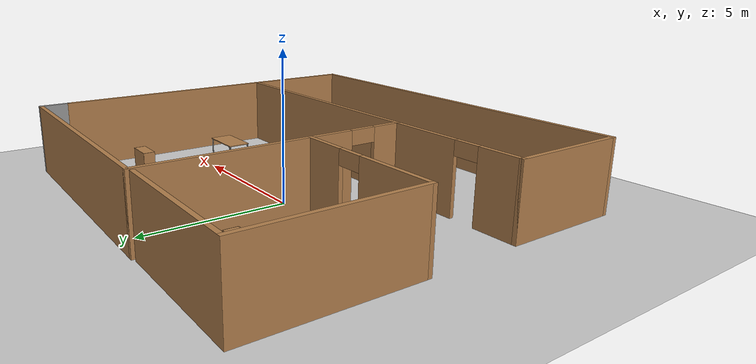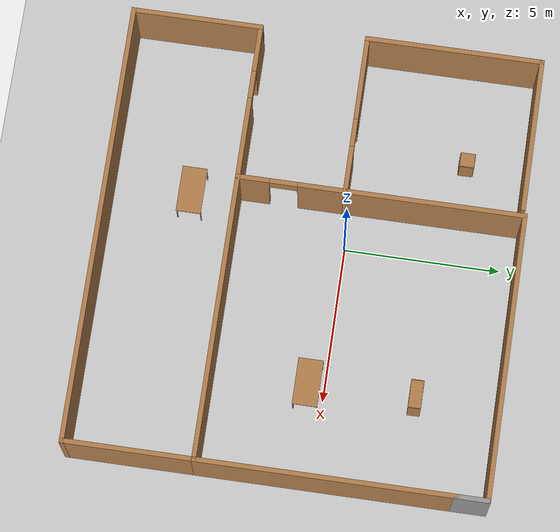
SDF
<sdf version="1.7">
 <world name="default">
  <light name="sun" type="directional">
   <pose>0 0 10 0 -0 0</pose>
   <diffuse>0.8 0.8 0.8 1</diffuse>
   <specular>0.2 0.2 0.2 1</specular>
   <attenuation>
    <range>1000</range>
    <constant>0.9</constant>
    <linear>0.01</linear>
    <quadratic>0.001</quadratic>
   </attenuation>
   <direction>-0.5 0.1 -0.9</direction>
   <spot><inner_angle>0</inner_angle><outer_angle>0</outer_angle><falloff>0</falloff></spot>
  </light>
  <model name="ground_plane">
   <static>1</static>
   <link name="link">
    <collision name="collision">
     <geometry><plane><normal>0 0 1</normal><size>100 100</size></plane></geometry>
     <surface><friction><ode><mu>100</mu><mu2>50</mu2></ode></friction></surface>
    </collision>
    <visual name="visual">
     <cast_shadows>0</cast_shadows>
     <geometry><plane><normal>0 0 1</normal><size>100 100</size></plane></geometry>
     <material>
      <script><uri>file://media/materials/scripts/gazebo.material</uri><name>Gazebo/Grey</name></script>
     </material>
    </visual>
   </link>
  </model>
  <gravity>0 0 -9.8</gravity>
  <magnetic_field>6e-06 2.3e-05 -4.2e-05</magnetic_field>
  <atmosphere type="adiabatic"/>
  <physics type="ode">
   <max_step_size>0.001</max_step_size>
   <real_time_factor>1</real_time_factor>
   <real_time_update_rate>1000</real_time_update_rate>
  </physics>
  <scene><ambient>0.4 0.4 0.4 1</ambient><background>0.7 0.7 0.7 1</background><shadows>1</shadows></scene>
  <audio><device>default</device></audio>
  <spherical_coordinates>
   <surface_model>EARTH_WGS84</surface_model>
   <latitude_deg>0</latitude_deg>
   <longitude_deg>0</longitude_deg>
   <elevation>0</elevation>
   <heading_deg>0</heading_deg>
  </spherical_coordinates>
  <model name="classrooms">
   <pose>0.733231 -1.10177 0 0 -0 0</pose>
   <link name="Wall_0">
    <pose>-2.00058 2.05 0 0 -0 -1.5708</pose>
    <visual name="Wall_0_Visual_0">
     <pose>-0.990815 0 1.25 0 -0 0</pose>
     <geometry><box><size>7.26837 0.15 2.5</size></box></geometry>
     <material>
      <script><uri>file://media/materials/scripts/gazebo.material</uri><name>Gazebo/Wood</name></script>
      <ambient>1 1 1 1</ambient>
     </material>
     <meta><layer>0</layer></meta>
    </visual>
    <collision name="Wall_0_Collision_0">
     <geometry><box><size>7.26837 0.15 2.5</size></box></geometry>
     <pose>-0.990815 0 1.25 0 -0 0</pose>
    </collision>
    <visual name="Wall_0_Visual_1">
     <pose>4.08418 0 1.25 0 -0 0</pose>
     <geometry><box><size>1.08163 0.15 2.5</size></box></geometry>
     <material>
      <script><uri>file://media/materials/scripts/gazebo.material</uri><name>Gazebo/Wood</name></script>
      <ambient>1 1 1 1</ambient>
     </material>
     <meta><layer>0</layer></meta>
    </visual>
    <collision name="Wall_0_Collision_1">
     <geometry><box><size>1.08163 0.15 2.5</size></box></geometry>
     <pose>4.08418 0 1.25 0 -0 0</pose>
    </collision>
    <visual name="Wall_0_Visual_2">
     <pose>3.09337 0 2.25 0 -0 0</pose>
     <geometry><box><size>0.9 0.15 0.5</size></box></geometry>
     <material>
      <script><uri>file://media/materials/scripts/gazebo.material</uri><name>Gazebo/Wood</name></script>
      <ambient>1 1 1 1</ambient>
     </material>
     <meta><layer>0</layer></meta>
    </visual>
    <collision name="Wall_0_Collision_2">
     <geometry><box><size>0.9 0.15 0.5</size></box></geometry>
     <pose>3.09337 0 2.25 0 -0 0</pose>
    </collision>
   </link>
   <link name="Wall_10">
    <pose>-4.54942 0.918041 0 0 -0 3.14159</pose>
    <visual name="Wall_10_Visual_0">
     <pose>-1.84258 0 1.25 0 -0 0</pose>
     <geometry><box><size>1.56485 0.15 2.5</size></box></geometry>
     <material>
      <script><uri>file://media/materials/scripts/gazebo.material</uri><name>Gazebo/Wood</name></script>
      <ambient>1 1 1 1</ambient>
     </material>
     <meta><layer>0</layer></meta>
    </visual>
    <collision name="Wall_10_Collision_0">
     <geometry><box><size>1.56485 0.15 2.5</size></box></geometry>
     <pose>-1.84258 0 1.25 0 -0 0</pose>
    </collision>
    <visual name="Wall_10_Visual_1">
     <pose>1.23242 0 1.25 0 -0 0</pose>
     <geometry><box><size>2.78516 0.15 2.5</size></box></geometry>
     <material>
      <script><uri>file://media/materials/scripts/gazebo.material</uri><name>Gazebo/Wood</name></script>
      <ambient>1 1 1 1</ambient>
     </material>
     <meta><layer>0</layer></meta>
    </visual>
    <collision name="Wall_10_Collision_1">
     <geometry><box><size>2.78516 0.15 2.5</size></box></geometry>
     <pose>1.23242 0 1.25 0 -0 0</pose>
    </collision>
    <visual name="Wall_10_Visual_2">
     <pose>-0.610155 0 2.25 0 -0 0</pose>
     <geometry><box><size>0.9 0.15 0.5</size></box></geometry>
     <material>
      <script><uri>file://media/materials/scripts/gazebo.material</uri><name>Gazebo/Wood</name></script>
      <ambient>1 1 1 1</ambient>
     </material>
     <meta><layer>0</layer></meta>
    </visual>
    <collision name="Wall_10_Collision_2">
     <geometry><box><size>0.9 0.15 0.5</size></box></geometry>
     <pose>-0.610155 0 2.25 0 -0 0</pose>
    </collision>
   </link>
   <link name="Wall_11">
    <collision name="Wall_11_Collision">
     <geometry><box><size>5.75 0.15 2.5</size></box></geometry>
     <pose>0 0 1.25 0 -0 0</pose>
    </collision>
    <visual name="Wall_11_Visual">
     <pose>0 0 1.25 0 -0 0</pose>
     <geometry><box><size>5.75 0.15 2.5</size></box></geometry>
     <material>
      <script><uri>file://media/materials/scripts/gazebo.material</uri><name>Gazebo/Wood</name></script>
      <ambient>1 1 1 1</ambient>
     </material>
     <meta><layer>0</layer></meta>
    </visual>
    <pose>-7.09942 3.71804 0 0 -0 1.5708</pose>
   </link>
   <link name="Wall_12">
    <collision name="Wall_12_Collision">
     <geometry><box><size>5 0.15 2.5</size></box></geometry>
     <pose>0 0 1.25 0 -0 0</pose>
    </collision>
    <visual name="Wall_12_Visual">
     <pose>0 0 1.25 0 -0 0</pose>
     <geometry><box><size>5 0.15 2.5</size></box></geometry>
     <material>
      <script><uri>file://media/materials/scripts/gazebo.material</uri><name>Gazebo/Wood</name></script>
      <ambient>1 1 1 1</ambient>
     </material>
     <meta><layer>0</layer></meta>
    </visual>
    <pose>-4.67442 6.51804 0 0 -0 0</pose>
   </link>
   <link name="Wall_15">
    <collision name="Wall_15_Collision">
     <geometry><box><size>4.25 0.15 2.5</size></box></geometry>
     <pose>0 0 1.25 0 -0 0</pose>
    </collision>
    <visual name="Wall_15_Visual">
     <pose>0 0 1.25 0 -0 0</pose>
     <geometry><box><size>4.25 0.15 2.5</size></box></geometry>
     <material>
      <script><uri>file://media/materials/scripts/gazebo.material</uri><name>Gazebo/Wood</name></script>
      <ambient>1 1 1 1</ambient>
     </material>
     <meta><layer>0</layer></meta>
    </visual>
    <pose>7.09942 -4.55 0 0 -0 -1.5708</pose>
   </link>
   <link name="Wall_17">
    <collision name="Wall_17_Collision">
     <geometry><box><size>14.25 0.15 2.5</size></box></geometry>
     <pose>0 0 1.25 0 -0 0</pose>
    </collision>
    <visual name="Wall_17_Visual">
     <pose>0 0 1.25 0 -0 0</pose>
     <geometry><box><size>14.25 0.15 2.5</size></box></geometry>
     <material>
      <script><uri>file://media/materials/scripts/gazebo.material</uri><name>Gazebo/Wood</name></script>
      <ambient>1 1 1 1</ambient>
     </material>
     <meta><layer>0</layer></meta>
    </visual>
    <pose>0.04942 -6.6 0 0 -0 3.14159</pose>
   </link>
   <link name="Wall_18">
    <collision name="Wall_18_Collision">
     <geometry><box><size>4.25 0.15 2.5</size></box></geometry>
     <pose>0 0 1.25 0 -0 0</pose>
    </collision>
    <visual name="Wall_18_Visual">
     <pose>0 0 1.25 0 -0 0</pose>
     <geometry><box><size>4.25 0.15 2.5</size></box></geometry>
     <material>
      <script><uri>file://media/materials/scripts/gazebo.material</uri><name>Gazebo/Wood</name></script>
      <ambient>1 1 1 1</ambient>
     </material>
     <meta><layer>0</layer></meta>
    </visual>
    <pose>-7.00058 -4.55 0 0 -0 1.5708</pose>
   </link>
   <link name="Wall_19">
    <pose>-4.50058 -2.5 0 0 -0 0</pose>
    <visual name="Wall_19_Visual_0">
     <pose>-1.79224 0 1.25 0 -0 0</pose>
     <geometry><box><size>1.56552 0.15 2.5</size></box></geometry>
     <material>
      <script><uri>file://media/materials/scripts/gazebo.material</uri><name>Gazebo/Wood</name></script>
      <ambient>1 1 1 1</ambient>
     </material>
     <meta><layer>0</layer></meta>
    </visual>
    <collision name="Wall_19_Collision_0">
     <geometry><box><size>1.56552 0.15 2.5</size></box></geometry>
     <pose>-1.79224 0 1.25 0 -0 0</pose>
    </collision>
    <visual name="Wall_19_Visual_1">
     <pose>1.23276 0 1.25 0 -0 0</pose>
     <geometry><box><size>2.68448 0.15 2.5</size></box></geometry>
     <material>
      <script><uri>file://media/materials/scripts/gazebo.material</uri><name>Gazebo/Wood</name></script>
      <ambient>1 1 1 1</ambient>
     </material>
     <meta><layer>0</layer></meta>
    </visual>
    <collision name="Wall_19_Collision_1">
     <geometry><box><size>2.68448 0.15 2.5</size></box></geometry>
     <pose>1.23276 0 1.25 0 -0 0</pose>
    </collision>
    <visual name="Wall_19_Visual_2">
     <pose>-0.559483 0 2.25 0 -0 0</pose>
     <geometry><box><size>0.9 0.15 0.5</size></box></geometry>
     <material>
      <script><uri>file://media/materials/scripts/gazebo.material</uri><name>Gazebo/Wood</name></script>
      <ambient>1 1 1 1</ambient>
     </material>
     <meta><layer>0</layer></meta>
    </visual>
    <collision name="Wall_19_Collision_2">
     <geometry><box><size>0.9 0.15 0.5</size></box></geometry>
     <pose>-0.559483 0 2.25 0 -0 0</pose>
    </collision>
   </link>
   <link name="Wall_2">
    <collision name="Wall_2_Collision">
     <geometry><box><size>9.25 0.15 2.5</size></box></geometry>
     <pose>0 0 1.25 0 -0 0</pose>
    </collision>
    <visual name="Wall_2_Visual">
     <pose>0 0 1.25 0 -0 0</pose>
     <geometry><box><size>9.25 0.15 2.5</size></box></geometry>
     <material>
      <script><uri>file://media/materials/scripts/gazebo.material</uri><name>Gazebo/Wood</name></script>
      <ambient>1 1 1 1</ambient>
     </material>
     <meta><layer>0</layer></meta>
    </visual>
    <pose>2.54942 -2.5 0 0 -0 3.14159</pose>
   </link>
   <link name="Wall_5">
    <collision name="Wall_5_Collision">
     <geometry><box><size>8.25 0.15 2.5</size></box></geometry>
     <pose>0 0 1.25 0 -0 0</pose>
    </collision>
    <visual name="Wall_5_Visual">
     <pose>0 0 1.25 0 -0 0</pose>
     <geometry><box><size>8.25 0.15 2.5</size></box></geometry>
     <material>
      <script><uri>file://media/materials/scripts/gazebo.material</uri><name>Gazebo/Wood</name></script>
      <ambient>1 1 1 1</ambient>
     </material>
     <meta><layer>0</layer></meta>
    </visual>
    <pose>7.09942 1.55 0 0 -0 1.5708</pose>
   </link>
   <link name="Wall_7">
    <collision name="Wall_7_Collision">
     <geometry><box><size>9.25 0.15 2.5</size></box></geometry>
     <pose>0 0 1.25 0 -0 0</pose>
    </collision>
    <visual name="Wall_7_Visual">
     <pose>0 0 1.25 0 -0 0</pose>
     <geometry><box><size>9.25 0.15 2.5</size></box></geometry>
     <material>
      <script><uri>file://media/materials/scripts/gazebo.material</uri><name>Gazebo/Wood</name></script>
      <ambient>1 1 1 1</ambient>
     </material>
     <meta><layer>0</layer></meta>
    </visual>
    <pose>2.54942 6.6 0 0 -0 0</pose>
   </link>
   <link name="Wall_8">
    <collision name="Wall_8_Collision">
     <geometry><box><size>1.15 0.15 2.5</size></box></geometry>
     <pose>0 0 1.25 0 -0 0</pose>
    </collision>
    <visual name="Wall_8_Visual">
     <pose>0 0 1.25 0 -0 0</pose>
     <geometry><box><size>1.15 0.15 2.5</size></box></geometry>
     <material>
      <script><uri>file://media/materials/scripts/gazebo.material</uri><name>Gazebo/Grey</name></script>
      <ambient>1 1 1 1</ambient>
     </material>
     <meta><layer>0</layer></meta>
    </visual>
    <pose>7.09942 6.1 0 0 -0 -1.5708</pose>
   </link>
   <static>1</static>
  </model>
  <model name="bookshelf">
   <static>1</static>
   <link name="link">
    <inertial><mass>1</mass></inertial>
    <collision name="back">
     <pose>0 0.005 0.6 0 -0 0</pose>
     <geometry><box><size>0.9 0.01 1.2</size></box></geometry>
    </collision>
    <visual name="visual1">
     <pose>0 0.005 0.6 0 -0 0</pose>
     <geometry><box><size>0.9 0.01 1.2</size></box></geometry>
     <material>
      <script><uri>file://media/materials/scripts/gazebo.material</uri><name>Gazebo/Wood</name></script>
     </material>
    </visual>
    <collision name="left_side">
     <pose>0.45 -0.195 0.6 0 -0 0</pose>
     <geometry><box><size>0.02 0.4 1.2</size></box></geometry>
    </collision>
    <visual name="visual2">
     <pose>0.45 -0.195 0.6 0 -0 0</pose>
     <geometry><box><size>0.02 0.4 1.2</size></box></geometry>
     <material>
      <script><uri>file://media/materials/scripts/gazebo.material</uri><name>Gazebo/Wood</name></script>
     </material>
    </visual>
    <collision name="right_side">
     <pose>-0.45 -0.195 0.6 0 -0 0</pose>
     <geometry><box><size>0.02 0.4 1.2</size></box></geometry>
    </collision>
    <visual name="visual3">
     <pose>-0.45 -0.195 0.6 0 -0 0</pose>
     <geometry><box><size>0.02 0.4 1.2</size></box></geometry>
     <material>
      <script><uri>file://media/materials/scripts/gazebo.material</uri><name>Gazebo/Wood</name></script>
     </material>
    </visual>
    <collision name="bottom">
     <pose>0 -0.195 0.03 0 -0 0</pose>
     <geometry><box><size>0.88 0.4 0.06</size></box></geometry>
    </collision>
    <visual name="visual4">
     <pose>0 -0.195 0.03 0 -0 0</pose>
     <geometry><box><size>0.88 0.4 0.06</size></box></geometry>
     <material>
      <script><uri>file://media/materials/scripts/gazebo.material</uri><name>Gazebo/Wood</name></script>
     </material>
    </visual>
    <collision name="top">
     <pose>0 -0.195 1.19 0 -0 0</pose>
     <geometry><box><size>0.88 0.4 0.02</size></box></geometry>
    </collision>
    <visual name="visual5">
     <pose>0 -0.195 1.19 0 -0 0</pose>
     <geometry><box><size>0.88 0.4 0.02</size></box></geometry>
     <material>
      <script><uri>file://media/materials/scripts/gazebo.material</uri><name>Gazebo/Wood</name></script>
     </material>
    </visual>
    <collision name="low_shelf">
     <pose>0 -0.195 0.43 0 -0 0</pose>
     <geometry><box><size>0.88 0.4 0.02</size></box></geometry>
    </collision>
    <visual name="visual6">
     <pose>0 -0.195 0.43 0 -0 0</pose>
     <geometry><box><size>0.88 0.4 0.02</size></box></geometry>
     <material>
      <script><uri>file://media/materials/scripts/gazebo.material</uri><name>Gazebo/Wood</name></script>
     </material>
    </visual>
    <collision name="high_shelf">
     <pose>0 -0.195 0.8 0 -0 0</pose>
     <geometry><box><size>0.88 0.4 0.02</size></box></geometry>
    </collision>
    <visual name="visual7">
     <pose>0 -0.195 0.8 0 -0 0</pose>
     <geometry><box><size>0.88 0.4 0.02</size></box></geometry>
     <material>
      <script><uri>file://media/materials/scripts/gazebo.material</uri><name>Gazebo/Wood</name></script>
     </material>
    </visual>
   </link>
   <pose>4.58329 3.08369 0 0 -0 0</pose>
  </model>
  <model name="table">
   <static>1</static>
   <link name="link">
    <collision name="surface">
     <pose>0 0 1 0 -0 0</pose>
     <geometry><box><size>1.5 0.8 0.03</size></box></geometry>
     <surface><friction><ode><mu>0.6</mu><mu2>0.6</mu2></ode></friction></surface>
    </collision>
    <visual name="visual1">
     <pose>0 0 1 0 -0 0</pose>
     <geometry><box><size>1.5 0.8 0.03</size></box></geometry>
     <material>
      <script><uri>file://media/materials/scripts/gazebo.material</uri><name>Gazebo/Wood</name></script>
     </material>
    </visual>
    <collision name="front_left_leg">
     <pose>0.68 0.38 0.5 0 -0 0</pose>
     <geometry><cylinder><radius>0.02</radius><length>1</length></cylinder></geometry>
    </collision>
    <visual name="front_left_leg">
     <pose>0.68 0.38 0.5 0 -0 0</pose>
     <geometry><cylinder><radius>0.02</radius><length>1</length></cylinder></geometry>
     <material>
      <script><uri>file://media/materials/scripts/gazebo.material</uri><name>Gazebo/Grey</name></script>
     </material>
    </visual>
    <collision name="front_right_leg">
     <pose>0.68 -0.38 0.5 0 -0 0</pose>
     <geometry><cylinder><radius>0.02</radius><length>1</length></cylinder></geometry>
    </collision>
    <visual name="front_right_leg">
     <pose>0.68 -0.38 0.5 0 -0 0</pose>
     <geometry><cylinder><radius>0.02</radius><length>1</length></cylinder></geometry>
     <material>
      <script><uri>file://media/materials/scripts/gazebo.material</uri><name>Gazebo/Grey</name></script>
     </material>
    </visual>
    <collision name="back_right_leg">
     <pose>-0.68 -0.38 0.5 0 -0 0</pose>
     <geometry><cylinder><radius>0.02</radius><length>1</length></cylinder></geometry>
    </collision>
    <visual name="back_right_leg">
     <pose>-0.68 -0.38 0.5 0 -0 0</pose>
     <geometry><cylinder><radius>0.02</radius><length>1</length></cylinder></geometry>
     <material>
      <script><uri>file://media/materials/scripts/gazebo.material</uri><name>Gazebo/Grey</name></script>
     </material>
    </visual>
    <collision name="back_left_leg">
     <pose>-0.68 0.38 0.5 0 -0 0</pose>
     <geometry><cylinder><radius>0.02</radius><length>1</length></cylinder></geometry>
    </collision>
    <visual name="back_left_leg">
     <pose>-0.68 0.38 0.5 0 -0 0</pose>
     <geometry><cylinder><radius>0.02</radius><length>1</length></cylinder></geometry>
     <material>
      <script><uri>file://media/materials/scripts/gazebo.material</uri><name>Gazebo/Grey</name></script>
     </material>
    </visual>
   </link>
   <pose>4.65091 -0.523955 0 0 -0 0</pose>
  </model>
  <model name="table_0">
   <static>1</static>
   <link name="link">
    <collision name="surface">
     <pose>0 0 1 0 -0 0</pose>
     <geometry><box><size>1.5 0.8 0.03</size></box></geometry>
     <surface><friction><ode><mu>0.6</mu><mu2>0.6</mu2></ode></friction></surface>
    </collision>
    <visual name="visual1">
     <pose>0 0 1 0 -0 0</pose>
     <geometry><box><size>1.5 0.8 0.03</size></box></geometry>
     <material>
      <script><uri>file://media/materials/scripts/gazebo.material</uri><name>Gazebo/Wood</name></script>
     </material>
    </visual>
    <collision name="front_left_leg">
     <pose>0.68 0.38 0.5 0 -0 0</pose>
     <geometry><cylinder><radius>0.02</radius><length>1</length></cylinder></geometry>
    </collision>
    <visual name="front_left_leg">
     <pose>0.68 0.38 0.5 0 -0 0</pose>
     <geometry><cylinder><radius>0.02</radius><length>1</length></cylinder></geometry>
     <material>
      <script><uri>file://media/materials/scripts/gazebo.material</uri><name>Gazebo/Grey</name></script>
     </material>
    </visual>
    <collision name="front_right_leg">
     <pose>0.68 -0.38 0.5 0 -0 0</pose>
     <geometry><cylinder><radius>0.02</radius><length>1</length></cylinder></geometry>
    </collision>
    <visual name="front_right_leg">
     <pose>0.68 -0.38 0.5 0 -0 0</pose>
     <geometry><cylinder><radius>0.02</radius><length>1</length></cylinder></geometry>
     <material>
      <script><uri>file://media/materials/scripts/gazebo.material</uri><name>Gazebo/Grey</name></script>
     </material>
    </visual>
    <collision name="back_right_leg">
     <pose>-0.68 -0.38 0.5 0 -0 0</pose>
     <geometry><cylinder><radius>0.02</radius><length>1</length></cylinder></geometry>
    </collision>
    <visual name="back_right_leg">
     <pose>-0.68 -0.38 0.5 0 -0 0</pose>
     <geometry><cylinder><radius>0.02</radius><length>1</length></cylinder></geometry>
     <material>
      <script><uri>file://media/materials/scripts/gazebo.material</uri><name>Gazebo/Grey</name></script>
     </material>
    </visual>
    <collision name="back_left_leg">
     <pose>-0.68 0.38 0.5 0 -0 0</pose>
     <geometry><cylinder><radius>0.02</radius><length>1</length></cylinder></geometry>
    </collision>
    <visual name="back_left_leg">
     <pose>-0.68 0.38 0.5 0 -0 0</pose>
     <geometry><cylinder><radius>0.02</radius><length>1</length></cylinder></geometry>
     <material>
      <script><uri>file://media/materials/scripts/gazebo.material</uri><name>Gazebo/Grey</name></script>
     </material>
    </visual>
   </link>
   <pose>-1.03364 -5.08711 0 0 -0 0</pose>
  </model>
  <model name="cabinet">
   <static>1</static>
   <link name="cabinet_bottom_plate">
    <inertial>
     <pose>0 0 -1 0 -0 0</pose>
     <inertia><ixx>2.05</ixx><ixy>0</ixy><ixz>0</ixz><iyy>2.05</iyy><iyz>0</iyz><izz>2.05</izz></inertia>
     <mass>25</mass>
    </inertial>
    <collision name="cabinet_bottom_plate_geom">
     <pose>0 0 0.01 0 -0 0</pose>
     <geometry><box><size>0.45 0.45 0.02</size></box></geometry>
    </collision>
    <visual name="cabinet_bottom_plate_geom_visual">
     <pose>0 0 0.01 0 -0 0</pose>
     <geometry><box><size>0.45 0.45 0.02</size></box></geometry>
     <material>
      <script><uri>file://media/materials/scripts/gazebo.material</uri><name>Gazebo/Wood</name></script>
     </material>
    </visual>
    <collision name="cabinet_bottom_plate_geom_cabinet_back_plate">
     <pose>0.235 0 0.51 0 -0 0</pose>
     <geometry><box><size>0.02 0.45 1.02</size></box></geometry>
    </collision>
    <visual name="cabinet_bottom_plate_geom_cabinet_back_plate_visual">
     <pose>0.235 0 0.51 0 -0 0</pose>
     <geometry><box><size>0.02 0.45 1.02</size></box></geometry>
     <material>
      <script><uri>file://media/materials/scripts/gazebo.material</uri><name>Gazebo/Wood</name></script>
     </material>
    </visual>
    <collision name="cabinet_bottom_plate_geom_cabinet_left_plate">
     <pose>0 0.235 0.51 0 -0 0</pose>
     <geometry><box><size>0.45 0.02 1.02</size></box></geometry>
    </collision>
    <visual name="cabinet_bottom_plate_geom_cabinet_left_plate_visual">
     <pose>0 0.235 0.51 0 -0 0</pose>
     <geometry><box><size>0.45 0.02 1.02</size></box></geometry>
     <material>
      <script><uri>file://media/materials/scripts/gazebo.material</uri><name>Gazebo/Wood</name></script>
     </material>
    </visual>
    <collision name="cabinet_bottom_plate_geom_cabinet_middle_plate">
     <pose>0 0 0.51 0 -0 0</pose>
     <geometry><box><size>0.45 0.45 0.02</size></box></geometry>
    </collision>
    <visual name="cabinet_bottom_plate_geom_cabinet_middle_plate_visual">
     <pose>0 0 0.51 0 -0 0</pose>
     <geometry><box><size>0.45 0.45 0.02</size></box></geometry>
     <material>
      <script><uri>file://media/materials/scripts/gazebo.material</uri><name>Gazebo/Wood</name></script>
     </material>
    </visual>
    <collision name="cabinet_bottom_plate_geom_cabinet_right_plate">
     <pose>0 -0.235 0.51 0 -0 0</pose>
     <geometry><box><size>0.45 0.02 1.02</size></box></geometry>
    </collision>
    <visual name="cabinet_bottom_plate_geom_cabinet_right_plate_visual">
     <pose>0 -0.235 0.51 0 -0 0</pose>
     <geometry><box><size>0.45 0.02 1.02</size></box></geometry>
     <material>
      <script><uri>file://media/materials/scripts/gazebo.material</uri><name>Gazebo/Wood</name></script>
     </material>
    </visual>
    <collision name="cabinet_bottom_plate_geom_cabinet_top_plate">
     <pose>0 0 1.01 0 -0 0</pose>
     <geometry><box><size>0.45 0.45 0.02</size></box></geometry>
    </collision>
    <visual name="cabinet_bottom_plate_geom_cabinet_top_plate_visual">
     <pose>0 0 1.01 0 -0 0</pose>
     <geometry><box><size>0.45 0.45 0.02</size></box></geometry>
     <material>
      <script><uri>file://media/materials/scripts/gazebo.material</uri><name>Gazebo/Wood</name></script>
     </material>
    </visual>
   </link>
   <pose>-3.26128 3.51064 0 0 -0 0</pose>
  </model>
 </world>
</sdf>
